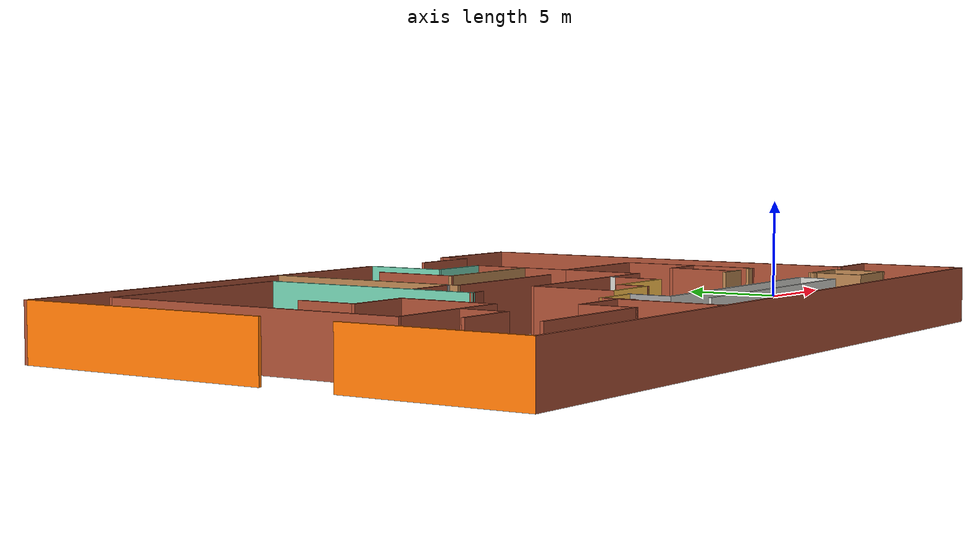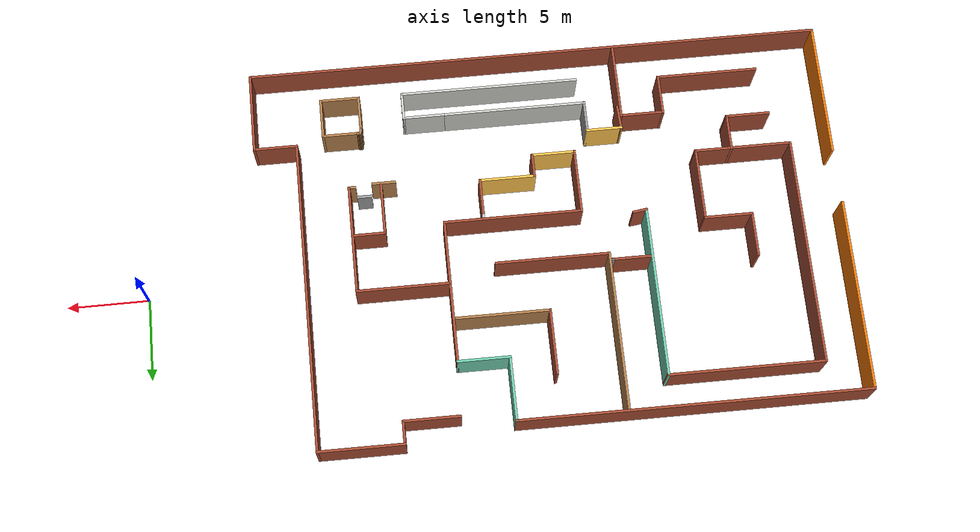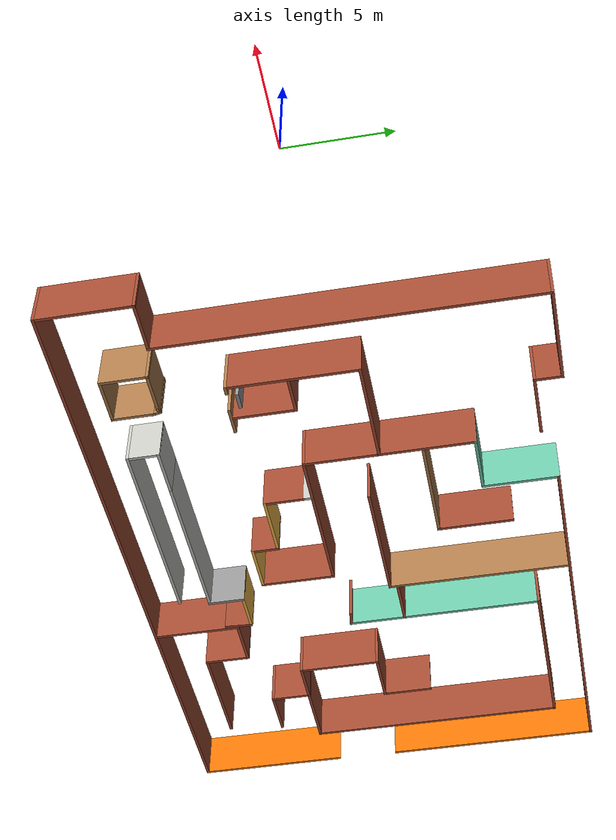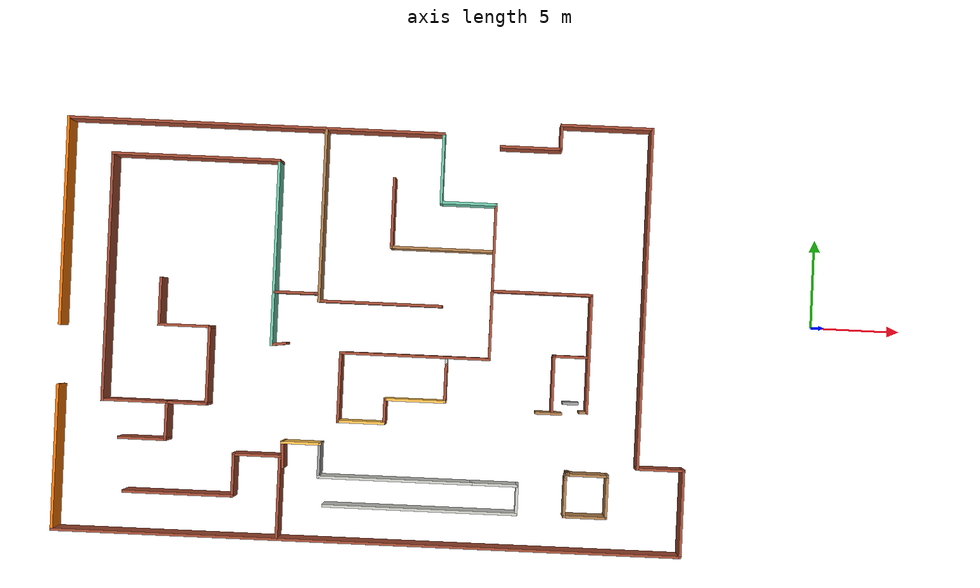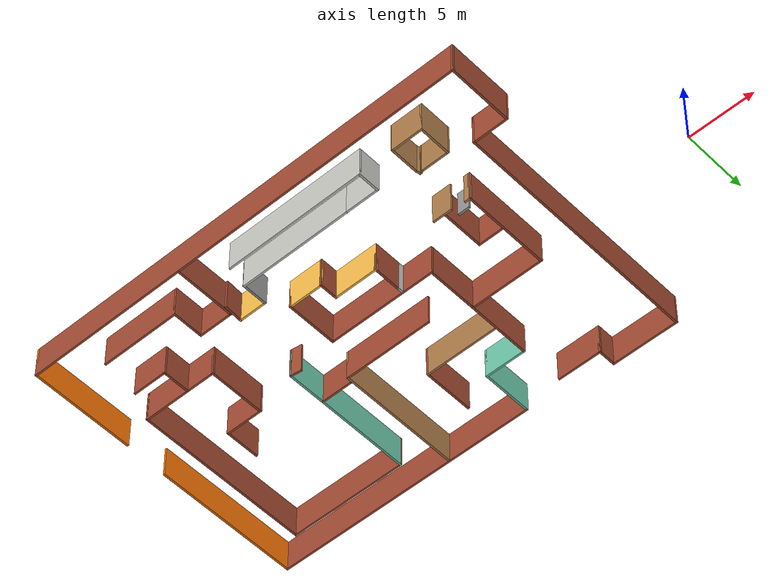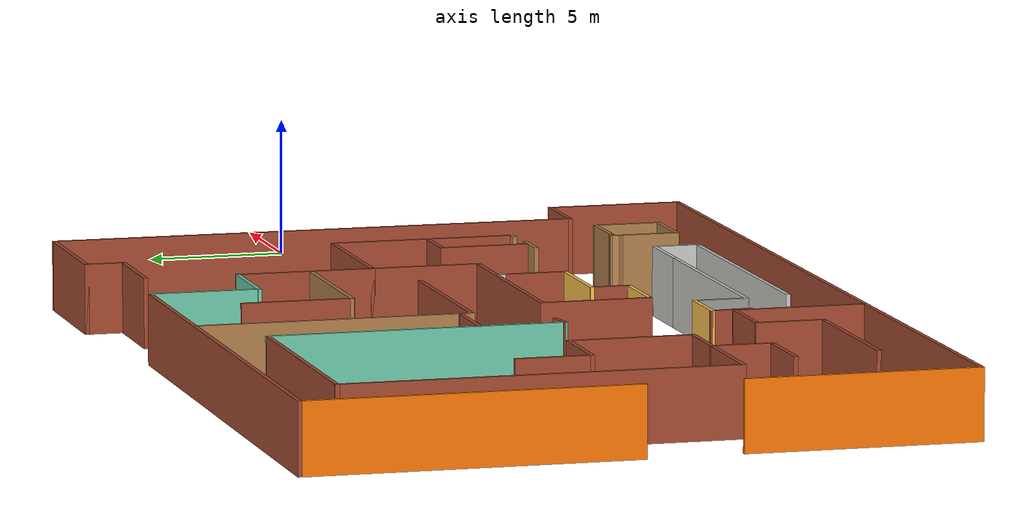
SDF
<?xml version='1.0'?>
<sdf version='1.6'>
  <model name='maze'>
    <pose frame=''>-24.8237 -1.22731 0 0 -0 0</pose>
    <link name='Door_5'>
      <collision name='Door_5_Collision'>
        <geometry>
          <box>
            <size>0.9 0.17 2</size>
          </box>
        </geometry>
        <pose frame=''>0 0 1 0 -0 0</pose>
      </collision>
      <visual name='Door_5_Visual'>
        <pose frame=''>0 0 1 0 -0 0</pose>
        <geometry>
          <box>
            <size>0.9 0.17 2</size>
          </box>
        </geometry>
        <material>
          <script>
            <uri>file://media/materials/scripts/gazebo.material</uri>
            <name>Gazebo/Grey</name>
          </script>
        </material>
      </visual>
      <pose frame=''>11.1938 -3.62362 0 0 -0 0</pose>
    </link>
    <link name='Wall_0'>
      <collision name='Wall_0_Collision'>
        <geometry>
          <box>
            <size>11.75 0.15 2.5</size>
          </box>
        </geometry>
        <pose frame=''>0 0 1.25 0 -0 0</pose>
      </collision>
      <visual name='Wall_0_Visual'>
        <pose frame=''>0 0 1.25 0 -0 0</pose>
        <geometry>
          <box>
            <size>11.75 0.15 2.5</size>
          </box>
        </geometry>
        <material>
          <script>
            <uri>file://media/materials/scripts/gazebo.material</uri>
            <name>Gazebo/Grey</name>
          </script>
          <ambient>0.996078 0.47451 0.0196078 1</ambient>
        </material>
        <meta>
          <layer>0</layer>
        </meta>
      </visual>
      <pose frame=''>-17.7022 5.39778 0 0 0 -1.5708</pose>
    </link>
    <link name='Wall_10'>
      <collision name='Wall_10_Collision'>
        <geometry>
          <box>
            <size>3.25 0.15 2.5</size>
          </box>
        </geometry>
        <pose frame=''>0 0 1.25 0 -0 0</pose>
      </collision>
      <visual name='Wall_10_Visual'>
        <pose frame=''>0 0 1.25 0 -0 0</pose>
        <geometry>
          <box>
            <size>3.25 0.15 2.5</size>
          </box>
        </geometry>
        <material>
          <script>
            <uri>file://media/materials/scripts/gazebo.material</uri>
            <name>Gazebo/Bricks</name>
          </script>
          <ambient>1 1 1 1</ambient>
        </material>
        <meta>
          <layer>0</layer>
        </meta>
      </visual>
      <pose frame=''>10.1375 -2.55969 0 0 0 -1.5708</pose>
    </link>
    <link name='Wall_12'>
      <collision name='Wall_12_Collision'>
        <geometry>
          <box>
            <size>5.75 0.15 2.5</size>
          </box>
        </geometry>
        <pose frame=''>0 0 1.25 0 -0 0</pose>
      </collision>
      <visual name='Wall_12_Visual'>
        <pose frame=''>0 0 1.25 0 -0 0</pose>
        <geometry>
          <box>
            <size>5.75 0.15 2.5</size>
          </box>
        </geometry>
        <material>
          <script>
            <uri>file://media/materials/scripts/gazebo.material</uri>
            <name>Gazebo/Wood</name>
          </script>
          <ambient>1 1 1 1</ambient>
        </material>
        <meta>
          <layer>0</layer>
        </meta>
      </visual>
      <pose frame=''>3.52692 4.7124 0 0 -0 3.14159</pose>
    </link>
    <link name='Wall_13'>
      <collision name='Wall_13_Collision'>
        <geometry>
          <box>
            <size>4 0.15 2.5</size>
          </box>
        </geometry>
        <pose frame=''>0 0 1.25 0 -0 0</pose>
      </collision>
      <visual name='Wall_13_Visual'>
        <pose frame=''>0 0 1.25 0 -0 0</pose>
        <geometry>
          <box>
            <size>4 0.15 2.5</size>
          </box>
        </geometry>
        <material>
          <script>
            <uri>file://media/materials/scripts/gazebo.material</uri>
            <name>Gazebo/Bricks</name>
          </script>
          <ambient>1 1 1 1</ambient>
        </material>
        <meta>
          <layer>0</layer>
        </meta>
      </visual>
      <pose frame=''>0.726922 6.6374 0 0 -0 1.5708</pose>
    </link>
    <link name='Wall_16'>
      <collision name='Wall_16_Collision'>
        <geometry>
          <box>
            <size>9.75 0.15 2.5</size>
          </box>
        </geometry>
        <pose frame=''>0 0 1.25 0 -0 0</pose>
      </collision>
      <visual name='Wall_16_Visual'>
        <pose frame=''>0 0 1.25 0 -0 0</pose>
        <geometry>
          <box>
            <size>9.75 0.15 2.5</size>
          </box>
        </geometry>
        <material>
          <script>
            <uri>file://media/materials/scripts/gazebo.material</uri>
            <name>Gazebo/Wood</name>
          </script>
          <ambient>1 1 1 1</ambient>
        </material>
        <meta>
          <layer>0</layer>
        </meta>
      </visual>
      <pose frame=''>-3.2099 6.3113 0 0 0 -1.5708</pose>
    </link>
    <link name='Wall_17'>
      <collision name='Wall_17_Collision'>
        <geometry>
          <box>
            <size>7 0.15 2.5</size>
          </box>
        </geometry>
        <pose frame=''>0 0 1.25 0 -0 0</pose>
      </collision>
      <visual name='Wall_17_Visual'>
        <pose frame=''>0 0 1.25 0 -0 0</pose>
        <geometry>
          <box>
            <size>7 0.15 2.5</size>
          </box>
        </geometry>
        <material>
          <script>
            <uri>file://media/materials/scripts/gazebo.material</uri>
            <name>Gazebo/Bricks</name>
          </script>
          <ambient>1 1 1 1</ambient>
        </material>
        <meta>
          <layer>0</layer>
        </meta>
      </visual>
      <pose frame=''>0.215102 1.5113 0 0 -0 0</pose>
    </link>
    <link name='Wall_19'>
      <collision name='Wall_19_Collision'>
        <geometry>
          <box>
            <size>4 0.15 2.5</size>
          </box>
        </geometry>
        <pose frame=''>0 0 1.25 0 -0 0</pose>
      </collision>
      <visual name='Wall_19_Visual'>
        <pose frame=''>0 0 1.25 0 -0 0</pose>
        <geometry>
          <box>
            <size>4 0.15 2.5</size>
          </box>
        </geometry>
        <material>
          <script>
            <uri>file://media/materials/scripts/gazebo.material</uri>
            <name>Gazebo/Bricks</name>
          </script>
          <ambient>1 1 1 1</ambient>
        </material>
        <meta>
          <layer>0</layer>
        </meta>
      </visual>
      <pose frame=''>6.49777 0.572776 0 0 0 -1.5708</pose>
    </link>
    <link name='Wall_2'>
      <collision name='Wall_2_Collision'>
        <geometry>
          <box>
            <size>21.25 0.15 2.5</size>
          </box>
        </geometry>
        <pose frame=''>0 0 1.25 0 -0 0</pose>
      </collision>
      <visual name='Wall_2_Visual'>
        <pose frame=''>0 0 1.25 0 -0 0</pose>
        <geometry>
          <box>
            <size>21.25 0.15 2.5</size>
          </box>
        </geometry>
        <material>
          <script>
            <uri>file://media/materials/scripts/gazebo.material</uri>
            <name>Gazebo/Bricks</name>
          </script>
          <ambient>1 1 1 1</ambient>
        </material>
        <meta>
          <layer>0</layer>
        </meta>
      </visual>
      <pose frame=''>-7.15223 11.1978 0 0 -0 0</pose>
    </link>
    <link name='Wall_20'>
      <collision name='Wall_20_Collision'>
        <geometry>
          <box>
            <size>8.5 0.15 2.5</size>
          </box>
        </geometry>
        <pose frame=''>0 0 1.25 0 -0 0</pose>
      </collision>
      <visual name='Wall_20_Visual'>
        <pose frame=''>0 0 1.25 0 -0 0</pose>
        <geometry>
          <box>
            <size>8.5 0.15 2.5</size>
          </box>
        </geometry>
        <material>
          <script>
            <uri>file://media/materials/scripts/gazebo.material</uri>
            <name>Gazebo/Bricks</name>
          </script>
          <ambient>1 1 1 1</ambient>
        </material>
        <meta>
          <layer>0</layer>
        </meta>
      </visual>
      <pose frame=''>2.32277 -1.35222 0 0 -0 3.14159</pose>
    </link>
    <link name='Wall_21'>
      <collision name='Wall_21_Collision'>
        <geometry>
          <box>
            <size>4 0.15 2.5</size>
          </box>
        </geometry>
        <pose frame=''>0 0 1.25 0 -0 0</pose>
      </collision>
      <visual name='Wall_21_Visual'>
        <pose frame=''>0 0 1.25 0 -0 0</pose>
        <geometry>
          <box>
            <size>4 0.15 2.5</size>
          </box>
        </geometry>
        <material>
          <script>
            <uri>file://media/materials/scripts/gazebo.material</uri>
            <name>Gazebo/Bricks</name>
          </script>
          <ambient>1 1 1 1</ambient>
        </material>
        <meta>
          <layer>0</layer>
        </meta>
      </visual>
      <pose frame=''>-1.85223 -3.27722 0 0 0 -1.5708</pose>
    </link>
    <link name='Wall_22'>
      <collision name='Wall_22_Collision'>
        <geometry>
          <box>
            <size>2.75 0.15 2.5</size>
          </box>
        </geometry>
        <pose frame=''>0 0 1.25 0 -0 0</pose>
      </collision>
      <visual name='Wall_22_Visual'>
        <pose frame=''>0 0 1.25 0 -0 0</pose>
        <geometry>
          <box>
            <size>2.75 0.15 2.5</size>
          </box>
        </geometry>
        <material>
          <script>
            <uri>file://media/materials/scripts/gazebo.material</uri>
            <name>Gazebo/Grey</name>
          </script>
          <ambient>1 0.764706 0.305882 1</ambient>
        </material>
        <meta>
          <layer>0</layer>
        </meta>
      </visual>
      <pose frame=''>-0.552228 -5.20222 0 0 -0 0</pose>
    </link>
    <link name='Wall_23'>
      <collision name='Wall_23_Collision'>
        <geometry>
          <box>
            <size>1.5 0.15 2.5</size>
          </box>
        </geometry>
        <pose frame=''>0 0 1.25 0 -0 0</pose>
      </collision>
      <visual name='Wall_23_Visual'>
        <pose frame=''>0 0 1.25 0 -0 0</pose>
        <geometry>
          <box>
            <size>1.5 0.15 2.5</size>
          </box>
        </geometry>
        <material>
          <script>
            <uri>file://media/materials/scripts/gazebo.material</uri>
            <name>Gazebo/Bricks</name>
          </script>
          <ambient>1 1 1 1</ambient>
        </material>
        <meta>
          <layer>0</layer>
        </meta>
      </visual>
      <pose frame=''>0.747771 -4.52722 0 0 -0 1.5708</pose>
    </link>
    <link name='Wall_24'>
      <collision name='Wall_24_Collision'>
        <geometry>
          <box>
            <size>3.5 0.15 2.5</size>
          </box>
        </geometry>
        <pose frame=''>0 0 1.25 0 -0 0</pose>
      </collision>
      <visual name='Wall_24_Visual'>
        <pose frame=''>0 0 1.25 0 -0 0</pose>
        <geometry>
          <box>
            <size>3.5 0.15 2.5</size>
          </box>
        </geometry>
        <material>
          <script>
            <uri>file://media/materials/scripts/gazebo.material</uri>
            <name>Gazebo/Grey</name>
          </script>
          <ambient>1 0.764706 0.305882 1</ambient>
        </material>
        <meta>
          <layer>0</layer>
        </meta>
      </visual>
      <pose frame=''>2.42277 -3.85222 0 0 -0 0</pose>
    </link>
    <link name='Wall_25'>
      <collision name='Wall_25_Collision'>
        <geometry>
          <box>
            <size>2.25 0.15 2.5</size>
          </box>
        </geometry>
        <pose frame=''>0 0 1.25 0 -0 0</pose>
      </collision>
      <visual name='Wall_25_Visual'>
        <pose frame=''>0 0 1.25 0 -0 0</pose>
        <geometry>
          <box>
            <size>2.25 0.15 2.5</size>
          </box>
        </geometry>
        <material>
          <script>
            <uri>file://media/materials/scripts/gazebo.material</uri>
            <name>Gazebo/Bricks</name>
          </script>
          <ambient>1 1 1 1</ambient>
        </material>
        <meta>
          <layer>0</layer>
        </meta>
      </visual>
      <pose frame=''>4.09777 -2.80222 0 0 -0 1.5708</pose>
    </link>
    <link name='Wall_27'>
      <collision name='Wall_27_Collision'>
        <geometry>
          <box>
            <size>0.5 0.15 2.5</size>
          </box>
        </geometry>
        <pose frame=''>0 0 1.25 0 -0 0</pose>
      </collision>
      <visual name='Wall_27_Visual'>
        <pose frame=''>0 0 1.25 0 -0 0</pose>
        <geometry>
          <box>
            <size>0.5 0.15 2.5</size>
          </box>
        </geometry>
        <material>
          <script>
            <uri>file://media/materials/scripts/gazebo.material</uri>
            <name>Gazebo/CeilingTiled</name>
          </script>
          <ambient>1 1 1 1</ambient>
        </material>
        <meta>
          <layer>0</layer>
        </meta>
      </visual>
      <pose frame=''>4.09777 -1.57722 0 0 -0 1.5708</pose>
    </link>
    <link name='Wall_29'>
      <collision name='Wall_29_Collision'>
        <geometry>
          <box>
            <size>8.25 0.15 2.5</size>
          </box>
        </geometry>
        <pose frame=''>0 0 1.25 0 -0 0</pose>
      </collision>
      <visual name='Wall_29_Visual'>
        <pose frame=''>0 0 1.25 0 -0 0</pose>
        <geometry>
          <box>
            <size>8.25 0.15 2.5</size>
          </box>
        </geometry>
        <material>
          <script>
            <uri>file://media/materials/scripts/gazebo.material</uri>
            <name>Gazebo/Grey</name>
          </script>
          <ambient>0.996078 0.47451 0.0196078 1</ambient>
        </material>
        <meta>
          <layer>0</layer>
        </meta>
      </visual>
      <pose frame=''>-17.6478 -7.925 0 0 0 -1.5708</pose>
    </link>
    <link name='Wall_3'>
      <collision name='Wall_3_Collision'>
        <geometry>
          <box>
            <size>4 0.15 2.5</size>
          </box>
        </geometry>
        <pose frame=''>0 0 1.25 0 -0 0</pose>
      </collision>
      <visual name='Wall_3_Visual'>
        <pose frame=''>0 0 1.25 0 -0 0</pose>
        <geometry>
          <box>
            <size>4 0.15 2.5</size>
          </box>
        </geometry>
        <material>
          <script>
            <uri>file://media/materials/scripts/gazebo.material</uri>
            <name>Gazebo/Grey</name>
          </script>
          <ambient>0.435294 0.796078 0.67451 1</ambient>
        </material>
        <meta>
          <layer>0</layer>
        </meta>
      </visual>
      <pose frame=''>3.39777 9.27278 0 0 0 -1.5708</pose>
    </link>
    <link name='Wall_30'>
      <collision name='Wall_30_Collision'>
        <geometry>
          <box>
            <size>35.5 0.15 2.5</size>
          </box>
        </geometry>
        <pose frame=''>0 0 1.25 0 -0 0</pose>
      </collision>
      <visual name='Wall_30_Visual'>
        <pose frame=''>0 0 1.25 0 -0 0</pose>
        <geometry>
          <box>
            <size>35.5 0.15 2.5</size>
          </box>
        </geometry>
        <material>
          <script>
            <uri>file://media/materials/scripts/gazebo.material</uri>
            <name>Gazebo/Bricks</name>
          </script>
          <ambient>1 1 1 1</ambient>
        </material>
        <meta>
          <layer>0</layer>
        </meta>
      </visual>
      <pose frame=''>0.027228 -11.975 0 0 -0 0</pose>
    </link>
    <link name='Wall_31'>
      <collision name='Wall_31_Collision'>
        <geometry>
          <box>
            <size>5 0.15 2.5</size>
          </box>
        </geometry>
        <pose frame=''>0 0 1.25 0 -0 0</pose>
      </collision>
      <visual name='Wall_31_Visual'>
        <pose frame=''>0 0 1.25 0 -0 0</pose>
        <geometry>
          <box>
            <size>5 0.15 2.5</size>
          </box>
        </geometry>
        <material>
          <script>
            <uri>file://media/materials/scripts/gazebo.material</uri>
            <name>Gazebo/Bricks</name>
          </script>
          <ambient>1 1 1 1</ambient>
        </material>
        <meta>
          <layer>0</layer>
        </meta>
      </visual>
      <pose frame=''>17.7022 -9.55 0 0 -0 1.5708</pose>
    </link>
    <link name='Wall_32'>
      <collision name='Wall_32_Collision'>
        <geometry>
          <box>
            <size>2.75 0.15 2.5</size>
          </box>
        </geometry>
        <pose frame=''>0 0 1.25 0 -0 0</pose>
      </collision>
      <visual name='Wall_32_Visual'>
        <pose frame=''>0 0 1.25 0 -0 0</pose>
        <geometry>
          <box>
            <size>2.75 0.15 2.5</size>
          </box>
        </geometry>
        <material>
          <script>
            <uri>file://media/materials/scripts/gazebo.material</uri>
            <name>Gazebo/Bricks</name>
          </script>
          <ambient>1 1 1 1</ambient>
        </material>
        <meta>
          <layer>0</layer>
        </meta>
      </visual>
      <pose frame=''>16.4022 -7.125 0 0 -0 3.14159</pose>
    </link>
    <link name='Wall_33'>
      <collision name='Wall_33_Collision'>
        <geometry>
          <box>
            <size>19.25 0.15 2.5</size>
          </box>
        </geometry>
        <pose frame=''>0 0 1.25 0 -0 0</pose>
      </collision>
      <visual name='Wall_33_Visual'>
        <pose frame=''>0 0 1.25 0 -0 0</pose>
        <geometry>
          <box>
            <size>19.25 0.15 2.5</size>
          </box>
        </geometry>
        <material>
          <script>
            <uri>file://media/materials/scripts/gazebo.material</uri>
            <name>Gazebo/Bricks</name>
          </script>
          <ambient>1 1 1 1</ambient>
        </material>
        <meta>
          <layer>0</layer>
        </meta>
      </visual>
      <pose frame=''>15.1022 2.425 0 0 -0 1.5708</pose>
    </link>
    <link name='Wall_34'>
      <collision name='Wall_34_Collision'>
        <geometry>
          <box>
            <size>5.25 0.15 2.5</size>
          </box>
        </geometry>
        <pose frame=''>0 0 1.25 0 -0 0</pose>
      </collision>
      <visual name='Wall_34_Visual'>
        <pose frame=''>0 0 1.25 0 -0 0</pose>
        <geometry>
          <box>
            <size>5.25 0.15 2.5</size>
          </box>
        </geometry>
        <material>
          <script>
            <uri>file://media/materials/scripts/gazebo.material</uri>
            <name>Gazebo/Bricks</name>
          </script>
          <ambient>1 1 1 1</ambient>
        </material>
        <meta>
          <layer>0</layer>
        </meta>
      </visual>
      <pose frame=''>12.5522 11.975 0 0 -0 3.14159</pose>
    </link>
    <link name='Wall_35'>
      <collision name='Wall_35_Collision'>
        <geometry>
          <box>
            <size>1.5 0.15 2.5</size>
          </box>
        </geometry>
        <pose frame=''>0 0 1.25 0 -0 0</pose>
      </collision>
      <visual name='Wall_35_Visual'>
        <pose frame=''>0 0 1.25 0 -0 0</pose>
        <geometry>
          <box>
            <size>1.5 0.15 2.5</size>
          </box>
        </geometry>
        <material>
          <script>
            <uri>file://media/materials/scripts/gazebo.material</uri>
            <name>Gazebo/Bricks</name>
          </script>
          <ambient>1 1 1 1</ambient>
        </material>
        <meta>
          <layer>0</layer>
        </meta>
      </visual>
      <pose frame=''>10.0022 11.3 0 0 0 -1.5708</pose>
    </link>
    <link name='Wall_36'>
      <collision name='Wall_36_Collision'>
        <geometry>
          <box>
            <size>3.5 0.15 2.5</size>
          </box>
        </geometry>
        <pose frame=''>0 0 1.25 0 -0 0</pose>
      </collision>
      <visual name='Wall_36_Visual'>
        <pose frame=''>0 0 1.25 0 -0 0</pose>
        <geometry>
          <box>
            <size>3.5 0.15 2.5</size>
          </box>
        </geometry>
        <material>
          <script>
            <uri>file://media/materials/scripts/gazebo.material</uri>
            <name>Gazebo/Bricks</name>
          </script>
          <ambient>0.435294 0.796078 0.67451 1</ambient>
        </material>
        <meta>
          <layer>0</layer>
        </meta>
      </visual>
      <pose frame=''>8.32723 10.625 0 0 -0 3.14159</pose>
    </link>
    <link name='Wall_39'>
      <collision name='Wall_39_Collision'>
        <geometry>
          <box>
            <size>9.5 0.15 2.5</size>
          </box>
        </geometry>
        <pose frame=''>0 0 1.25 0 -0 0</pose>
      </collision>
      <visual name='Wall_39_Visual'>
        <pose frame=''>0 0 1.25 0 -0 0</pose>
        <geometry>
          <box>
            <size>9.5 0.15 2.5</size>
          </box>
        </geometry>
        <material>
          <script>
            <uri>file://media/materials/scripts/gazebo.material</uri>
            <name>Gazebo/Bricks</name>
          </script>
          <ambient>1 1 1 1</ambient>
        </material>
        <meta>
          <layer>0</layer>
        </meta>
      </visual>
      <pose frame=''>-10.4501 9.29196 0 0 -0 0</pose>
    </link>
    <link name='Wall_4'>
      <collision name='Wall_4_Collision'>
        <geometry>
          <box>
            <size>3.25 0.15 2.5</size>
          </box>
        </geometry>
        <pose frame=''>0 0 1.25 0 -0 0</pose>
      </collision>
      <visual name='Wall_4_Visual'>
        <pose frame=''>0 0 1.25 0 -0 0</pose>
        <geometry>
          <box>
            <size>3.25 0.15 2.5</size>
          </box>
        </geometry>
        <material>
          <script>
            <uri>file://media/materials/scripts/gazebo.material</uri>
            <name>Gazebo/Grey</name>
          </script>
          <ambient>0.435294 0.796078 0.67451 1</ambient>
        </material>
        <meta>
          <layer>0</layer>
        </meta>
      </visual>
      <pose frame=''>4.94777 7.34778 0 0 -0 0</pose>
    </link>
    <link name='Wall_40'>
      <collision name='Wall_40_Collision'>
        <geometry>
          <box>
            <size>10.5 0.15 2.5</size>
          </box>
        </geometry>
        <pose frame=''>0 0 1.25 0 -0 0</pose>
      </collision>
      <visual name='Wall_40_Visual'>
        <pose frame=''>0 0 1.25 0 -0 0</pose>
        <geometry>
          <box>
            <size>10.5 0.15 2.5</size>
          </box>
        </geometry>
        <material>
          <script>
            <uri>file://media/materials/scripts/gazebo.material</uri>
            <name>Gazebo/Grey</name>
          </script>
          <ambient>0.435294 0.796078 0.67451 1</ambient>
        </material>
        <meta>
          <layer>0</layer>
        </meta>
      </visual>
      <pose frame=''>-5.77513 4.11697 0 0 0 -1.5708</pose>
    </link>
    <link name='Wall_42'>
      <collision name='Wall_42_Collision'>
        <geometry>
          <box>
            <size>14 0.15 2.5</size>
          </box>
        </geometry>
        <pose frame=''>0 0 1.25 0 -0 0</pose>
      </collision>
      <visual name='Wall_42_Visual'>
        <pose frame=''>0 0 1.25 0 -0 0</pose>
        <geometry>
          <box>
            <size>14 0.15 2.5</size>
          </box>
        </geometry>
        <material>
          <script>
            <uri>file://media/materials/scripts/gazebo.material</uri>
            <name>Gazebo/Bricks</name>
          </script>
          <ambient>1 1 1 1</ambient>
        </material>
        <meta>
          <layer>0</layer>
        </meta>
      </visual>
      <pose frame=''>-15.1251 2.36696 0 0 0 -1.5708</pose>
    </link>
    <link name='Wall_43'>
      <collision name='Wall_43_Collision'>
        <geometry>
          <box>
            <size>6 0.15 2.5</size>
          </box>
        </geometry>
        <pose frame=''>0 0 1.25 0 -0 0</pose>
      </collision>
      <visual name='Wall_43_Visual'>
        <pose frame=''>0 0 1.25 0 -0 0</pose>
        <geometry>
          <box>
            <size>6 0.15 2.5</size>
          </box>
        </geometry>
        <material>
          <script>
            <uri>file://media/materials/scripts/gazebo.material</uri>
            <name>Gazebo/Bricks</name>
          </script>
          <ambient>1 1 1 1</ambient>
        </material>
        <meta>
          <layer>0</layer>
        </meta>
      </visual>
      <pose frame=''>-12.2001 -4.55804 0 0 -0 0</pose>
    </link>
    <link name='Wall_44'>
      <collision name='Wall_44_Collision'>
        <geometry>
          <box>
            <size>4.5 0.15 2.5</size>
          </box>
        </geometry>
        <pose frame=''>0 0 1.25 0 -0 0</pose>
      </collision>
      <visual name='Wall_44_Visual'>
        <pose frame=''>0 0 1.25 0 -0 0</pose>
        <geometry>
          <box>
            <size>4.5 0.15 2.5</size>
          </box>
        </geometry>
        <material>
          <script>
            <uri>file://media/materials/scripts/gazebo.material</uri>
            <name>Gazebo/Bricks</name>
          </script>
          <ambient>1 1 1 1</ambient>
        </material>
        <meta>
          <layer>0</layer>
        </meta>
      </visual>
      <pose frame=''>-9.27513 -2.38304 0 0 -0 1.5708</pose>
    </link>
    <link name='Wall_45'>
      <collision name='Wall_45_Collision'>
        <geometry>
          <box>
            <size>3 0.15 2.5</size>
          </box>
        </geometry>
        <pose frame=''>0 0 1.25 0 -0 0</pose>
      </collision>
      <visual name='Wall_45_Visual'>
        <pose frame=''>0 0 1.25 0 -0 0</pose>
        <geometry>
          <box>
            <size>3 0.15 2.5</size>
          </box>
        </geometry>
        <material>
          <script>
            <uri>file://media/materials/scripts/gazebo.material</uri>
            <name>Gazebo/Bricks</name>
          </script>
          <ambient>1 1 1 1</ambient>
        </material>
        <meta>
          <layer>0</layer>
        </meta>
      </visual>
      <pose frame=''>-10.7001 -0.208035 0 0 -0 3.14159</pose>
    </link>
    <link name='Wall_46'>
      <collision name='Wall_46_Collision'>
        <geometry>
          <box>
            <size>2.75 0.15 2.5</size>
          </box>
        </geometry>
        <pose frame=''>0 0 1.25 0 -0 0</pose>
      </collision>
      <visual name='Wall_46_Visual'>
        <pose frame=''>0 0 1.25 0 -0 0</pose>
        <geometry>
          <box>
            <size>2.75 0.15 2.5</size>
          </box>
        </geometry>
        <material>
          <script>
            <uri>file://media/materials/scripts/gazebo.material</uri>
            <name>Gazebo/Bricks</name>
          </script>
          <ambient>1 1 1 1</ambient>
        </material>
        <meta>
          <layer>0</layer>
        </meta>
      </visual>
      <pose frame=''>-12.1251 1.09197 0 0 -0 1.5708</pose>
    </link>
    <link name='Wall_48'>
      <collision name='Wall_48_Collision'>
        <geometry>
          <box>
            <size>2.25 0.15 2.5</size>
          </box>
        </geometry>
        <pose frame=''>0 0 1.25 0 -0 0</pose>
      </collision>
      <visual name='Wall_48_Visual'>
        <pose frame=''>0 0 1.25 0 -0 0</pose>
        <geometry>
          <box>
            <size>2.25 0.15 2.5</size>
          </box>
        </geometry>
        <material>
          <script>
            <uri>file://media/materials/scripts/gazebo.material</uri>
            <name>Gazebo/Bricks</name>
          </script>
          <ambient>1 1 1 1</ambient>
        </material>
        <meta>
          <layer>0</layer>
        </meta>
      </visual>
      <pose frame=''>-11.495 -5.60181 0 0 0 -1.5708</pose>
    </link>
    <link name='Wall_49'>
      <collision name='Wall_49_Collision'>
        <geometry>
          <box>
            <size>2.75 0.15 2.5</size>
          </box>
        </geometry>
        <pose frame=''>0 0 1.25 0 -0 0</pose>
      </collision>
      <visual name='Wall_49_Visual'>
        <pose frame=''>0 0 1.25 0 -0 0</pose>
        <geometry>
          <box>
            <size>2.75 0.15 2.5</size>
          </box>
        </geometry>
        <material>
          <script>
            <uri>file://media/materials/scripts/gazebo.material</uri>
            <name>Gazebo/Bricks</name>
          </script>
          <ambient>1 1 1 1</ambient>
        </material>
        <meta>
          <layer>0</layer>
        </meta>
      </visual>
      <pose frame=''>-12.795 -6.65181 0 0 -0 3.14159</pose>
    </link>
    <link name='Wall_5'>
      <collision name='Wall_5_Collision'>
        <geometry>
          <box>
            <size>5 0.15 2.5</size>
          </box>
        </geometry>
        <pose frame=''>0 0 1.25 0 -0 0</pose>
      </collision>
      <visual name='Wall_5_Visual'>
        <pose frame=''>0 0 1.25 0 -0 0</pose>
        <geometry>
          <box>
            <size>5 0.15 2.5</size>
          </box>
        </geometry>
        <material>
          <script>
            <uri>file://media/materials/scripts/gazebo.material</uri>
            <name>Gazebo/Bricks</name>
          </script>
          <ambient>1 1 1 1</ambient>
        </material>
        <meta>
          <layer>0</layer>
        </meta>
      </visual>
      <pose frame=''>6.49777 4.92278 0 0 0 -1.5708</pose>
    </link>
    <link name='Wall_51'>
      <collision name='Wall_51_Collision'>
        <geometry>
          <box>
            <size>6.25 0.15 2.5</size>
          </box>
        </geometry>
        <pose frame=''>0 0 1.25 0 -0 0</pose>
      </collision>
      <visual name='Wall_51_Visual'>
        <pose frame=''>0 0 1.25 0 -0 0</pose>
        <geometry>
          <box>
            <size>6.25 0.15 2.5</size>
          </box>
        </geometry>
        <material>
          <script>
            <uri>file://media/materials/scripts/gazebo.material</uri>
            <name>Gazebo/Bricks</name>
          </script>
          <ambient>1 1 1 1</ambient>
        </material>
        <meta>
          <layer>0</layer>
        </meta>
      </visual>
      <pose frame=''>-10.66 -9.65862 0 0 -0 0</pose>
    </link>
    <link name='Wall_52'>
      <collision name='Wall_52_Collision'>
        <geometry>
          <box>
            <size>2.5 0.15 2.5</size>
          </box>
        </geometry>
        <pose frame=''>0 0 1.25 0 -0 0</pose>
      </collision>
      <visual name='Wall_52_Visual'>
        <pose frame=''>0 0 1.25 0 -0 0</pose>
        <geometry>
          <box>
            <size>2.5 0.15 2.5</size>
          </box>
        </geometry>
        <material>
          <script>
            <uri>file://media/materials/scripts/gazebo.material</uri>
            <name>Gazebo/Bricks</name>
          </script>
          <ambient>1 1 1 1</ambient>
        </material>
        <meta>
          <layer>0</layer>
        </meta>
      </visual>
      <pose frame=''>-7.60999 -8.48362 0 0 -0 1.5708</pose>
    </link>
    <link name='Wall_53'>
      <collision name='Wall_53_Collision'>
        <geometry>
          <box>
            <size>2.75 0.15 2.5</size>
          </box>
        </geometry>
        <pose frame=''>0 0 1.25 0 -0 0</pose>
      </collision>
      <visual name='Wall_53_Visual'>
        <pose frame=''>0 0 1.25 0 -0 0</pose>
        <geometry>
          <box>
            <size>2.75 0.15 2.5</size>
          </box>
        </geometry>
        <material>
          <script>
            <uri>file://media/materials/scripts/gazebo.material</uri>
            <name>Gazebo/Bricks</name>
          </script>
          <ambient>1 1 1 1</ambient>
        </material>
        <meta>
          <layer>0</layer>
        </meta>
      </visual>
      <pose frame=''>-6.30999 -7.30862 0 0 -0 0</pose>
    </link>
    <link name='Wall_54'>
      <collision name='Wall_54_Collision'>
        <geometry>
          <box>
            <size>4.75 0.15 2.5</size>
          </box>
        </geometry>
        <pose frame=''>0 0 1.25 0 -0 0</pose>
      </collision>
      <visual name='Wall_54_Visual'>
        <pose frame=''>0 0 1.25 0 -0 0</pose>
        <geometry>
          <box>
            <size>4.75 0.15 2.5</size>
          </box>
        </geometry>
        <material>
          <script>
            <uri>file://media/materials/scripts/gazebo.material</uri>
            <name>Gazebo/Bricks</name>
          </script>
          <ambient>1 1 1 1</ambient>
        </material>
        <meta>
          <layer>0</layer>
        </meta>
      </visual>
      <pose frame=''>-5.00999 -9.60862 0 0 0 -1.5708</pose>
    </link>
    <link name='Wall_57'>
      <collision name='Wall_57_Collision'>
        <geometry>
          <box>
            <size>0.921573 0.15 2.5</size>
          </box>
        </geometry>
        <pose frame=''>0 0 1.25 0 -0 0</pose>
      </collision>
      <visual name='Wall_57_Visual'>
        <pose frame=''>0 0 1.25 0 -0 0</pose>
        <geometry>
          <box>
            <size>0.921573 0.15 2.5</size>
          </box>
        </geometry>
        <material>
          <script>
            <uri>file://media/materials/scripts/gazebo.material</uri>
            <name>Gazebo/Bricks</name>
          </script>
          <ambient>1 1 1 1</ambient>
        </material>
        <meta>
          <layer>0</layer>
        </meta>
      </visual>
      <pose frame=''>-5.39256 -1.00833 0 0 0 -3.01239</pose>
    </link>
    <link name='Wall_59'>
      <collision name='Wall_59_Collision'>
        <geometry>
          <box>
            <size>2.25 0.15 2.5</size>
          </box>
        </geometry>
        <pose frame=''>0 0 1.25 0 -0 0</pose>
      </collision>
      <visual name='Wall_59_Visual'>
        <pose frame=''>0 0 1.25 0 -0 0</pose>
        <geometry>
          <box>
            <size>2.25 0.15 2.5</size>
          </box>
        </geometry>
        <material>
          <script>
            <uri>file://media/materials/scripts/gazebo.material</uri>
            <name>Gazebo/Grey</name>
          </script>
          <ambient>1 0.764706 0.305882 1</ambient>
        </material>
        <meta>
          <layer>0</layer>
        </meta>
      </visual>
      <pose frame=''>-3.8615 -6.5207 0 0 -0 0</pose>
    </link>
    <link name='Wall_6'>
      <collision name='Wall_6_Collision'>
        <geometry>
          <box>
            <size>5.75 0.15 2.5</size>
          </box>
        </geometry>
        <pose frame=''>0 0 1.25 0 -0 0</pose>
      </collision>
      <visual name='Wall_6_Visual'>
        <pose frame=''>0 0 1.25 0 -0 0</pose>
        <geometry>
          <box>
            <size>5.75 0.15 2.5</size>
          </box>
        </geometry>
        <material>
          <script>
            <uri>file://media/materials/scripts/gazebo.material</uri>
            <name>Gazebo/Bricks</name>
          </script>
          <ambient>1 1 1 1</ambient>
        </material>
        <meta>
          <layer>0</layer>
        </meta>
      </visual>
      <pose frame=''>9.29777 2.49778 0 0 -0 0</pose>
    </link>
    <link name='Wall_60'>
      <collision name='Wall_60_Collision'>
        <geometry>
          <box>
            <size>2 0.15 2.5</size>
          </box>
        </geometry>
        <pose frame=''>0 0 1.25 0 -0 0</pose>
      </collision>
      <visual name='Wall_60_Visual'>
        <pose frame=''>0 0 1.25 0 -0 0</pose>
        <geometry>
          <box>
            <size>2 0.15 2.5</size>
          </box>
        </geometry>
        <material>
          <script>
            <uri>file://media/materials/scripts/gazebo.material</uri>
            <name>Gazebo/Grey</name>
          </script>
          <ambient>1 1 1 1</ambient>
        </material>
        <meta>
          <layer>0</layer>
        </meta>
      </visual>
      <pose frame=''>-2.8115 -7.4457 0 0 0 -1.5708</pose>
    </link>
    <link name='Wall_61'>
      <collision name='Wall_61_Collision'>
        <geometry>
          <box>
            <size>8.75 0.15 2.5</size>
          </box>
        </geometry>
        <pose frame=''>0 0 1.25 0 -0 0</pose>
      </collision>
      <visual name='Wall_61_Visual'>
        <pose frame=''>0 0 1.25 0 -0 0</pose>
        <geometry>
          <box>
            <size>8.75 0.15 2.5</size>
          </box>
        </geometry>
        <material>
          <script>
            <uri>file://media/materials/scripts/gazebo.material</uri>
            <name>Gazebo/CeilingTiled</name>
          </script>
          <ambient>1 0.764706 0.305882 1</ambient>
        </material>
        <meta>
          <layer>0</layer>
        </meta>
      </visual>
      <pose frame=''>1.4885 -8.3707 0 0 -0 0</pose>
    </link>
    <link name='Wall_62'>
      <collision name='Wall_62_Collision'>
        <geometry>
          <box>
            <size>2.75 0.15 2.5</size>
          </box>
        </geometry>
        <pose frame=''>0 0 1.25 0 -0 0</pose>
      </collision>
      <visual name='Wall_62_Visual'>
        <pose frame=''>0 0 1.25 0 -0 0</pose>
        <geometry>
          <box>
            <size>2.75 0.15 2.5</size>
          </box>
        </geometry>
        <material>
          <script>
            <uri>file://media/materials/scripts/gazebo.material</uri>
            <name>Gazebo/CeilingTiled</name>
          </script>
          <ambient>1 0.764706 0.305882 1</ambient>
        </material>
        <meta>
          <layer>0</layer>
        </meta>
      </visual>
      <pose frame=''>7.0885 -8.3707 0 0 -0 0</pose>
    </link>
    <link name='Wall_63'>
      <collision name='Wall_63_Collision'>
        <geometry>
          <box>
            <size>1.75 0.15 2.5</size>
          </box>
        </geometry>
        <pose frame=''>0 0 1.25 0 -0 0</pose>
      </collision>
      <visual name='Wall_63_Visual'>
        <pose frame=''>0 0 1.25 0 -0 0</pose>
        <geometry>
          <box>
            <size>1.75 0.15 2.5</size>
          </box>
        </geometry>
        <material>
          <script>
            <uri>file://media/materials/scripts/gazebo.material</uri>
            <name>Gazebo/CeilingTiled</name>
          </script>
          <ambient>1 1 1 1</ambient>
        </material>
        <meta>
          <layer>0</layer>
        </meta>
      </visual>
      <pose frame=''>8.3885 -9.1707 0 0 0 -1.5708</pose>
    </link>
    <link name='Wall_64'>
      <collision name='Wall_64_Collision'>
        <geometry>
          <box>
            <size>11 0.15 2.5</size>
          </box>
        </geometry>
        <pose frame=''>0 0 1.25 0 -0 0</pose>
      </collision>
      <visual name='Wall_64_Visual'>
        <pose frame=''>0 0 1.25 0 -0 0</pose>
        <geometry>
          <box>
            <size>11 0.15 2.5</size>
          </box>
        </geometry>
        <material>
          <script>
            <uri>file://media/materials/scripts/gazebo.material</uri>
            <name>Gazebo/CeilingTiled</name>
          </script>
          <ambient>1 0.764706 0.305882 1</ambient>
        </material>
        <meta>
          <layer>0</layer>
        </meta>
      </visual>
      <pose frame=''>2.9635 -9.9707 0 0 -0 3.14159</pose>
    </link>
    <link name='Wall_66'>
      <collision name='Wall_66_Collision'>
        <geometry>
          <box>
            <size>2.25 0.15 2.5</size>
          </box>
        </geometry>
        <pose frame=''>0 0 1.25 0 -0 0</pose>
      </collision>
      <visual name='Wall_66_Visual'>
        <pose frame=''>0 0 1.25 0 -0 0</pose>
        <geometry>
          <box>
            <size>2.25 0.15 2.5</size>
          </box>
        </geometry>
        <material>
          <script>
            <uri>file://media/materials/scripts/gazebo.material</uri>
            <name>Gazebo/Wood</name>
          </script>
          <ambient>1 1 1 1</ambient>
        </material>
        <meta>
          <layer>0</layer>
        </meta>
      </visual>
      <pose frame=''>11.0857 -8.92431 0 0 0 -1.5708</pose>
    </link>
    <link name='Wall_67'>
      <collision name='Wall_67_Collision'>
        <geometry>
          <box>
            <size>2.5 0.15 2.5</size>
          </box>
        </geometry>
        <pose frame=''>0 0 1.25 0 -0 0</pose>
      </collision>
      <visual name='Wall_67_Visual'>
        <pose frame=''>0 0 1.25 0 -0 0</pose>
        <geometry>
          <box>
            <size>2.5 0.15 2.5</size>
          </box>
        </geometry>
        <material>
          <script>
            <uri>file://media/materials/scripts/gazebo.material</uri>
            <name>Gazebo/Wood</name>
          </script>
          <ambient>1 1 1 1</ambient>
        </material>
        <meta>
          <layer>0</layer>
        </meta>
      </visual>
      <pose frame=''>12.2607 -9.97431 0 0 -0 0</pose>
    </link>
    <link name='Wall_68'>
      <collision name='Wall_68_Collision'>
        <geometry>
          <box>
            <size>2.5 0.15 2.5</size>
          </box>
        </geometry>
        <pose frame=''>0 0 1.25 0 -0 0</pose>
      </collision>
      <visual name='Wall_68_Visual'>
        <pose frame=''>0 0 1.25 0 -0 0</pose>
        <geometry>
          <box>
            <size>2.5 0.15 2.5</size>
          </box>
        </geometry>
        <material>
          <script>
            <uri>file://media/materials/scripts/gazebo.material</uri>
            <name>Gazebo/Wood</name>
          </script>
          <ambient>1 1 1 1</ambient>
        </material>
        <meta>
          <layer>0</layer>
        </meta>
      </visual>
      <pose frame=''>13.4357 -8.79931 0 0 -0 1.5708</pose>
    </link>
    <link name='Wall_69'>
      <collision name='Wall_69_Collision'>
        <geometry>
          <box>
            <size>2.25 0.15 2.5</size>
          </box>
        </geometry>
        <pose frame=''>0 0 1.25 0 -0 0</pose>
      </collision>
      <visual name='Wall_69_Visual'>
        <pose frame=''>0 0 1.25 0 -0 0</pose>
        <geometry>
          <box>
            <size>2.25 0.15 2.5</size>
          </box>
        </geometry>
        <material>
          <script>
            <uri>file://media/materials/scripts/gazebo.material</uri>
            <name>Gazebo/Wood</name>
          </script>
          <ambient>1 1 1 1</ambient>
        </material>
        <meta>
          <layer>0</layer>
        </meta>
      </visual>
      <pose frame=''>12.3857 -7.62431 0 0 -0 3.14159</pose>
    </link>
    <link name='Wall_7'>
      <collision name='Wall_7_Collision'>
        <geometry>
          <box>
            <size>6.75 0.15 2.5</size>
          </box>
        </geometry>
        <pose frame=''>0 0 1.25 0 -0 0</pose>
      </collision>
      <visual name='Wall_7_Visual'>
        <pose frame=''>0 0 1.25 0 -0 0</pose>
        <geometry>
          <box>
            <size>6.75 0.15 2.5</size>
          </box>
        </geometry>
        <material>
          <script>
            <uri>file://media/materials/scripts/gazebo.material</uri>
            <name>Gazebo/Bricks</name>
          </script>
          <ambient>1 1 1 1</ambient>
        </material>
        <meta>
          <layer>0</layer>
        </meta>
      </visual>
      <pose frame=''>12.0978 -0.802224 0 0 0 -1.5708</pose>
    </link>
    <link name='Wall_70'>
      <collision name='Wall_70_Collision'>
        <geometry>
          <box>
            <size>0.25 0.15 2.5</size>
          </box>
        </geometry>
        <pose frame=''>0 0 1.25 0 -0 0</pose>
      </collision>
      <visual name='Wall_70_Visual'>
        <pose frame=''>0 0 1.25 0 -0 0</pose>
        <geometry>
          <box>
            <size>0.25 0.15 2.5</size>
          </box>
        </geometry>
        <material>
          <script>
            <uri>file://media/materials/scripts/gazebo.material</uri>
            <name>Gazebo/Wood</name>
          </script>
          <ambient>1 1 1 1</ambient>
        </material>
        <meta>
          <layer>0</layer>
        </meta>
      </visual>
      <pose frame=''>11.2924 -7.59931 0 0 -0 2.61799</pose>
    </link>
    <link name='Wall_71'>
      <collision name='Wall_71_Collision'>
        <geometry>
          <box>
            <size>0.25 0.15 2.5</size>
          </box>
        </geometry>
        <pose frame=''>0 0 1.25 0 -0 0</pose>
      </collision>
      <visual name='Wall_71_Visual'>
        <pose frame=''>0 0 1.25 0 -0 0</pose>
        <geometry>
          <box>
            <size>0.25 0.15 2.5</size>
          </box>
        </geometry>
        <material>
          <script>
            <uri>file://media/materials/scripts/gazebo.material</uri>
            <name>Gazebo/Wood</name>
          </script>
          <ambient>1 1 1 1</ambient>
        </material>
        <meta>
          <layer>0</layer>
        </meta>
      </visual>
      <pose frame=''>11.1991 -7.57431 0 0 -0 3.14159</pose>
    </link>
    <link name='Wall_72'>
      <collision name='Wall_72_Collision'>
        <geometry>
          <box>
            <size>0.456626 0.15 2.5</size>
          </box>
        </geometry>
        <pose frame=''>0 0 1.25 0 -0 0</pose>
      </collision>
      <visual name='Wall_72_Visual'>
        <pose frame=''>0 0 1.25 0 -0 0</pose>
        <geometry>
          <box>
            <size>0.456626 0.15 2.5</size>
          </box>
        </geometry>
        <material>
          <script>
            <uri>file://media/materials/scripts/gazebo.material</uri>
            <name>Gazebo/Wood</name>
          </script>
          <ambient>1 1 1 1</ambient>
        </material>
        <meta>
          <layer>0</layer>
        </meta>
      </visual>
      <pose frame=''>11.1174 -7.72431 0 0 0 -1.77906</pose>
    </link>
    <link name='Wall_74'>
      <collision name='Wall_74_Collision'>
        <geometry>
          <box>
            <size>1.53451 0.15 2.5</size>
          </box>
        </geometry>
        <pose frame=''>0 0 1.25 0 -0 0</pose>
      </collision>
      <visual name='Wall_74_Visual'>
        <pose frame=''>0 0 1.25 0 -0 0</pose>
        <geometry>
          <box>
            <size>1.53451 0.15 2.5</size>
          </box>
        </geometry>
        <material>
          <script>
            <uri>file://media/materials/scripts/gazebo.material</uri>
            <name>Gazebo/Bricks</name>
          </script>
          <ambient>1 1 1 1</ambient>
        </material>
        <meta>
          <layer>0</layer>
        </meta>
      </visual>
      <pose frame=''>-4.87068 -7.21175 0 0 -0 1.6298</pose>
    </link>
    <link name='Wall_76'>
      <collision name='Wall_76_Collision'>
        <geometry>
          <box>
            <size>2.5 0.15 2.5</size>
          </box>
        </geometry>
        <pose frame=''>0 0 1.25 0 -0 0</pose>
      </collision>
      <visual name='Wall_76_Visual'>
        <pose frame=''>0 0 1.25 0 -0 0</pose>
        <geometry>
          <box>
            <size>2.5 0.15 2.5</size>
          </box>
        </geometry>
        <material>
          <script>
            <uri>file://media/materials/scripts/gazebo.material</uri>
            <name>Gazebo/Bricks</name>
          </script>
          <ambient>1 1 1 1</ambient>
        </material>
        <meta>
          <layer>0</layer>
        </meta>
      </visual>
      <pose frame=''>-4.58081 1.91448 0 0 -0 0</pose>
    </link>
    <link name='Wall_77'>
      <collision name='Wall_77_Collision'>
        <geometry>
          <box>
            <size>0.25 0.15 2.5</size>
          </box>
        </geometry>
        <pose frame=''>0 0 1.25 0 -0 0</pose>
      </collision>
      <visual name='Wall_77_Visual'>
        <pose frame=''>0 0 1.25 0 -0 0</pose>
        <geometry>
          <box>
            <size>0.25 0.15 2.5</size>
          </box>
        </geometry>
        <material>
          <script>
            <uri>file://media/materials/scripts/gazebo.material</uri>
            <name>Gazebo/Grey</name>
          </script>
          <ambient>1 1 1 1</ambient>
        </material>
        <meta>
          <layer>0</layer>
        </meta>
      </visual>
      <pose frame=''>-3.35581 1.91448 0 0 -0 0</pose>
    </link>
    <link name='Wall_79'>
      <collision name='Wall_79_Collision'>
        <geometry>
          <box>
            <size>1.5 0.15 2.5</size>
          </box>
        </geometry>
        <pose frame=''>0 0 1.25 0 -0 0</pose>
      </collision>
      <visual name='Wall_79_Visual'>
        <pose frame=''>0 0 1.25 0 -0 0</pose>
        <geometry>
          <box>
            <size>1.5 0.15 2.5</size>
          </box>
        </geometry>
        <material>
          <script>
            <uri>file://media/materials/scripts/gazebo.material</uri>
            <name>Gazebo/Wood</name>
          </script>
          <ambient>1 1 1 1</ambient>
        </material>
        <meta>
          <layer>0</layer>
        </meta>
      </visual>
      <pose frame=''>9.9613 -4.22843 0 0 -0 0</pose>
    </link>
    <link name='Wall_81'>
      <collision name='Wall_81_Collision'>
        <geometry>
          <box>
            <size>0.5 0.15 2.5</size>
          </box>
        </geometry>
        <pose frame=''>0 0 1.25 0 -0 0</pose>
      </collision>
      <visual name='Wall_81_Visual'>
        <pose frame=''>0 0 1.25 0 -0 0</pose>
        <geometry>
          <box>
            <size>0.5 0.15 2.5</size>
          </box>
        </geometry>
        <material>
          <script>
            <uri>file://media/materials/scripts/gazebo.material</uri>
            <name>Gazebo/Wood</name>
          </script>
          <ambient>1 1 1 1</ambient>
        </material>
        <meta>
          <layer>0</layer>
        </meta>
      </visual>
      <pose frame=''>11.9228 -4.10222 0 0 -0 3.14159</pose>
    </link>
    <link name='Wall_9'>
      <collision name='Wall_9_Collision'>
        <geometry>
          <box>
            <size>2 0.15 2.5</size>
          </box>
        </geometry>
        <pose frame=''>0 0 1.25 0 -0 0</pose>
      </collision>
      <visual name='Wall_9_Visual'>
        <pose frame=''>0 0 1.25 0 -0 0</pose>
        <geometry>
          <box>
            <size>2 0.15 2.5</size>
          </box>
        </geometry>
        <material>
          <script>
            <uri>file://media/materials/scripts/gazebo.material</uri>
            <name>Gazebo/Bricks</name>
          </script>
          <ambient>1 1 1 1</ambient>
        </material>
        <meta>
          <layer>0</layer>
        </meta>
      </visual>
      <pose frame=''>11.0625 -1.00969 0 0 -0 3.14159</pose>
    </link>
    <static>1</static>
  </model>
</sdf>
